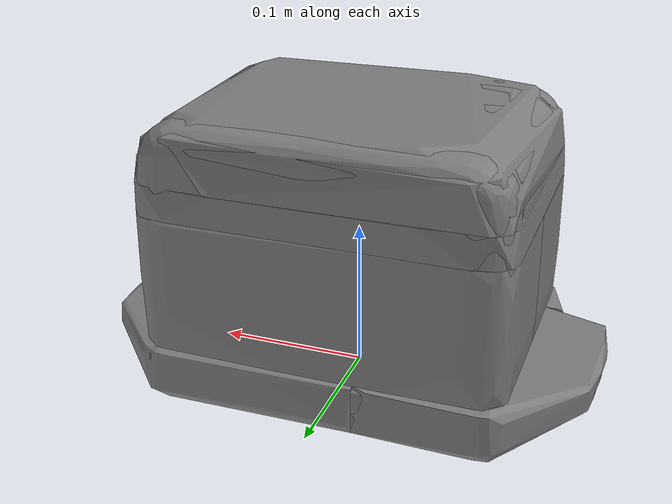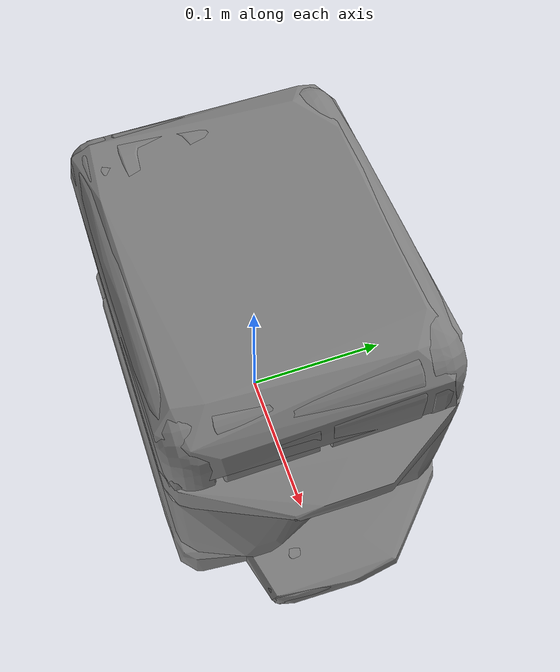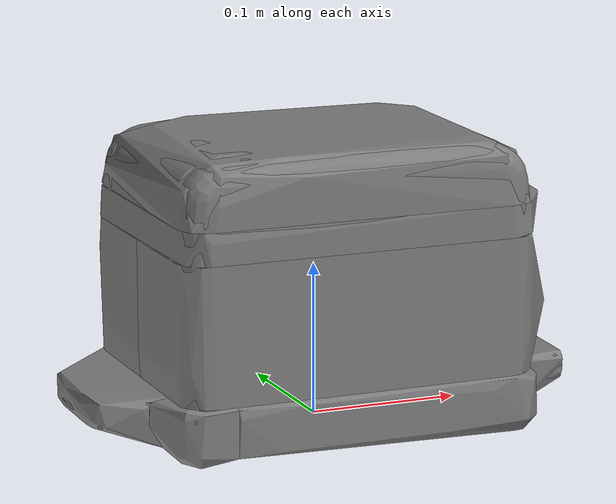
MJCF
<mujoco model="toaster1">
  <asset>
    <mesh file="../../meshes/train/toaster1/simple_mesh.stl" name="toaster1_mesh" scale="1 1 1"/>
    <mesh file="../../meshes/train/toaster1/toaster1_hull_1.stl" name="toaster1_hull_mesh_1" scale="1 1 1"/>
    <mesh file="../../meshes/train/toaster1/toaster1_hull_2.stl" name="toaster1_hull_mesh_2" scale="1 1 1"/>
    <mesh file="../../meshes/train/toaster1/toaster1_hull_3.stl" name="toaster1_hull_mesh_3" scale="1 1 1"/>
    <mesh file="../../meshes/train/toaster1/toaster1_hull_4.stl" name="toaster1_hull_mesh_4" scale="1 1 1"/>
    <mesh file="../../meshes/train/toaster1/toaster1_hull_5.stl" name="toaster1_hull_mesh_5" scale="1 1 1"/>
    <mesh file="../../meshes/train/toaster1/toaster1_hull_6.stl" name="toaster1_hull_mesh_6" scale="1 1 1"/>
    <mesh file="../../meshes/train/toaster1/toaster1_hull_7.stl" name="toaster1_hull_mesh_7" scale="1 1 1"/>
    <mesh file="../../meshes/train/toaster1/toaster1_hull_8.stl" name="toaster1_hull_mesh_8" scale="1 1 1"/>
  </asset>
  <worldbody>
    <body>
      <body name="object">
        <geom pos="0 0 0" mesh="toaster1_mesh" type="mesh" contype="0" conaffinity="0" group="1"/>
        <geom pos="0 0 0" mesh="toaster1_hull_mesh_1" type="mesh" margin="0.001" solimp="0.998 0.998 0.001" solref="0.001 1" density="2000" friction="0.95 0.3 0.1" group="0" condim="4"/>
        <geom pos="0 0 0" mesh="toaster1_hull_mesh_2" type="mesh" margin="0.001" solimp="0.998 0.998 0.001" solref="0.001 1" density="2000" friction="0.95 0.3 0.1" group="0" condim="4"/>
        <geom pos="0 0 0" mesh="toaster1_hull_mesh_3" type="mesh" margin="0.001" solimp="0.998 0.998 0.001" solref="0.001 1" density="2000" friction="0.95 0.3 0.1" group="0" condim="4"/>
        <geom pos="0 0 0" mesh="toaster1_hull_mesh_4" type="mesh" margin="0.001" solimp="0.998 0.998 0.001" solref="0.001 1" density="2000" friction="0.95 0.3 0.1" group="0" condim="4"/>
        <geom pos="0 0 0" mesh="toaster1_hull_mesh_5" type="mesh" margin="0.001" solimp="0.998 0.998 0.001" solref="0.001 1" density="2000" friction="0.95 0.3 0.1" group="0" condim="4"/>
        <geom pos="0 0 0" mesh="toaster1_hull_mesh_6" type="mesh" margin="0.001" solimp="0.998 0.998 0.001" solref="0.001 1" density="2000" friction="0.95 0.3 0.1" group="0" condim="4"/>
        <geom pos="0 0 0" mesh="toaster1_hull_mesh_7" type="mesh" margin="0.001" solimp="0.998 0.998 0.001" solref="0.001 1" density="2000" friction="0.95 0.3 0.1" group="0" condim="4"/>
        <geom pos="0 0 0" mesh="toaster1_hull_mesh_8" type="mesh" margin="0.001" solimp="0.998 0.998 0.001" solref="0.001 1" density="2000" friction="0.95 0.3 0.1" group="0" condim="4"/>
      </body>
      <site rgba="0 0 0 0" size="0.005" pos="0 0 -0.001" name="bottom_site"/>
      <site rgba="0 0 0 0" size="0.005" pos="0 0 0.02" name="top_site"/>
      <site rgba="0 0 0 0" size="0.005" pos="0.0375 0.02 0" name="horizontal_radius_site"/>
    </body>
  </worldbody>
</mujoco>
